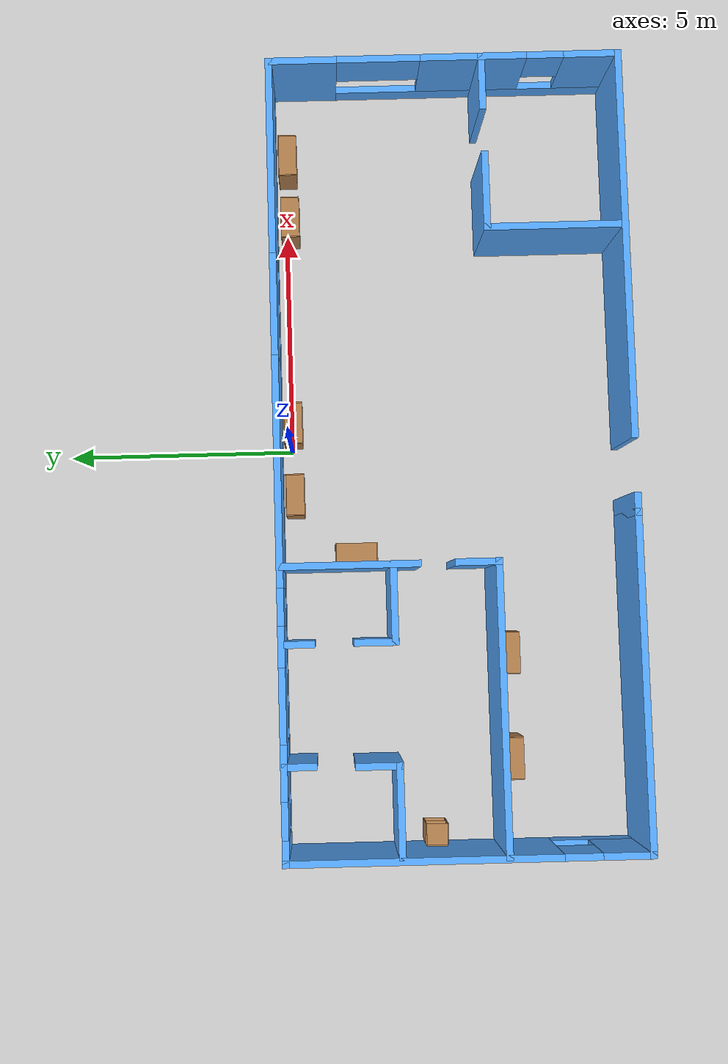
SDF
<sdf version="1.6">
 <world name="default">
  <light name="sun" type="directional">
   <pose>0 0 10 0 -0 0</pose>
   <diffuse>0.8 0.8 0.8 1</diffuse>
   <specular>0.2 0.2 0.2 1</specular>
   <attenuation>
    <range>1000</range>
    <constant>0.9</constant>
    <linear>0.01</linear>
    <quadratic>0.001</quadratic>
   </attenuation>
   <direction>-0.5 0.1 -0.9</direction>
  </light>
  <model name="ground_plane">
   <static>1</static>
   <link name="link">
    <collision name="collision">
     <geometry><plane><normal>0 0 1</normal><size>100 100</size></plane></geometry>
     <surface><friction><ode><mu>100</mu><mu2>50</mu2></ode></friction></surface>
    </collision>
    <visual name="visual">
     <cast_shadows>0</cast_shadows>
     <geometry><plane><normal>0 0 1</normal><size>100 100</size></plane></geometry>
     <material>
      <script><uri>file://media/materials/scripts/gazebo.material</uri><name>Gazebo/Grey</name></script>
     </material>
    </visual>
   </link>
  </model>
  <gravity>0 0 -9.8</gravity>
  <magnetic_field>6e-06 2.3e-05 -4.2e-05</magnetic_field>
  <atmosphere type="adiabatic"/>
  <physics name="default_physics" default="0" type="ode">
   <max_step_size>0.001</max_step_size>
   <real_time_factor>1</real_time_factor>
   <real_time_update_rate>1000</real_time_update_rate>
  </physics>
  <scene><ambient>0.4 0.4 0.4 1</ambient><background>0.7 0.7 0.7 1</background><shadows>1</shadows></scene>
  <spherical_coordinates>
   <surface_model>EARTH_WGS84</surface_model>
   <latitude_deg>0</latitude_deg>
   <longitude_deg>0</longitude_deg>
   <elevation>0</elevation>
   <heading_deg>0</heading_deg>
  </spherical_coordinates>
  <model name="bookshelf">
   <static>1</static>
   <link name="link">
    <inertial><mass>1</mass></inertial>
    <collision name="back">
     <pose>0 0.005 0.6 0 -0 0</pose>
     <geometry><box><size>0.9 0.01 1.2</size></box></geometry>
    </collision>
    <visual name="visual1">
     <pose>0 0.005 0.6 0 -0 0</pose>
     <geometry><box><size>0.9 0.01 1.2</size></box></geometry>
     <material>
      <script><uri>file://media/materials/scripts/gazebo.material</uri><name>Gazebo/Wood</name></script>
     </material>
    </visual>
    <collision name="left_side">
     <pose>0.45 -0.195 0.6 0 -0 0</pose>
     <geometry><box><size>0.02 0.4 1.2</size></box></geometry>
    </collision>
    <visual name="visual2">
     <pose>0.45 -0.195 0.6 0 -0 0</pose>
     <geometry><box><size>0.02 0.4 1.2</size></box></geometry>
     <material>
      <script><uri>file://media/materials/scripts/gazebo.material</uri><name>Gazebo/Wood</name></script>
     </material>
    </visual>
    <collision name="right_side">
     <pose>-0.45 -0.195 0.6 0 -0 0</pose>
     <geometry><box><size>0.02 0.4 1.2</size></box></geometry>
    </collision>
    <visual name="visual3">
     <pose>-0.45 -0.195 0.6 0 -0 0</pose>
     <geometry><box><size>0.02 0.4 1.2</size></box></geometry>
     <material>
      <script><uri>file://media/materials/scripts/gazebo.material</uri><name>Gazebo/Wood</name></script>
     </material>
    </visual>
    <collision name="bottom">
     <pose>0 -0.195 0.03 0 -0 0</pose>
     <geometry><box><size>0.88 0.4 0.06</size></box></geometry>
    </collision>
    <visual name="visual4">
     <pose>0 -0.195 0.03 0 -0 0</pose>
     <geometry><box><size>0.88 0.4 0.06</size></box></geometry>
     <material>
      <script><uri>file://media/materials/scripts/gazebo.material</uri><name>Gazebo/Wood</name></script>
     </material>
    </visual>
    <collision name="top">
     <pose>0 -0.195 1.19 0 -0 0</pose>
     <geometry><box><size>0.88 0.4 0.02</size></box></geometry>
    </collision>
    <visual name="visual5">
     <pose>0 -0.195 1.19 0 -0 0</pose>
     <geometry><box><size>0.88 0.4 0.02</size></box></geometry>
     <material>
      <script><uri>file://media/materials/scripts/gazebo.material</uri><name>Gazebo/Wood</name></script>
     </material>
    </visual>
    <collision name="low_shelf">
     <pose>0 -0.195 0.43 0 -0 0</pose>
     <geometry><box><size>0.88 0.4 0.02</size></box></geometry>
    </collision>
    <visual name="visual6">
     <pose>0 -0.195 0.43 0 -0 0</pose>
     <geometry><box><size>0.88 0.4 0.02</size></box></geometry>
     <material>
      <script><uri>file://media/materials/scripts/gazebo.material</uri><name>Gazebo/Wood</name></script>
     </material>
    </visual>
    <collision name="high_shelf">
     <pose>0 -0.195 0.8 0 -0 0</pose>
     <geometry><box><size>0.88 0.4 0.02</size></box></geometry>
    </collision>
    <visual name="visual7">
     <pose>0 -0.195 0.8 0 -0 0</pose>
     <geometry><box><size>0.88 0.4 0.02</size></box></geometry>
     <material>
      <script><uri>file://media/materials/scripts/gazebo.material</uri><name>Gazebo/Wood</name></script>
     </material>
    </visual>
   </link>
   <pose>6.60281 0.15051 0 0 -0 0</pose>
  </model>
  <model name="bookshelf_0">
   <static>1</static>
   <link name="link">
    <inertial><mass>1</mass></inertial>
    <collision name="back">
     <pose>0 0.005 0.6 0 -0 0</pose>
     <geometry><box><size>0.9 0.01 1.2</size></box></geometry>
    </collision>
    <visual name="visual1">
     <pose>0 0.005 0.6 0 -0 0</pose>
     <geometry><box><size>0.9 0.01 1.2</size></box></geometry>
     <material>
      <script><uri>file://media/materials/scripts/gazebo.material</uri><name>Gazebo/Wood</name></script>
     </material>
    </visual>
    <collision name="left_side">
     <pose>0.45 -0.195 0.6 0 -0 0</pose>
     <geometry><box><size>0.02 0.4 1.2</size></box></geometry>
    </collision>
    <visual name="visual2">
     <pose>0.45 -0.195 0.6 0 -0 0</pose>
     <geometry><box><size>0.02 0.4 1.2</size></box></geometry>
     <material>
      <script><uri>file://media/materials/scripts/gazebo.material</uri><name>Gazebo/Wood</name></script>
     </material>
    </visual>
    <collision name="right_side">
     <pose>-0.45 -0.195 0.6 0 -0 0</pose>
     <geometry><box><size>0.02 0.4 1.2</size></box></geometry>
    </collision>
    <visual name="visual3">
     <pose>-0.45 -0.195 0.6 0 -0 0</pose>
     <geometry><box><size>0.02 0.4 1.2</size></box></geometry>
     <material>
      <script><uri>file://media/materials/scripts/gazebo.material</uri><name>Gazebo/Wood</name></script>
     </material>
    </visual>
    <collision name="bottom">
     <pose>0 -0.195 0.03 0 -0 0</pose>
     <geometry><box><size>0.88 0.4 0.06</size></box></geometry>
    </collision>
    <visual name="visual4">
     <pose>0 -0.195 0.03 0 -0 0</pose>
     <geometry><box><size>0.88 0.4 0.06</size></box></geometry>
     <material>
      <script><uri>file://media/materials/scripts/gazebo.material</uri><name>Gazebo/Wood</name></script>
     </material>
    </visual>
    <collision name="top">
     <pose>0 -0.195 1.19 0 -0 0</pose>
     <geometry><box><size>0.88 0.4 0.02</size></box></geometry>
    </collision>
    <visual name="visual5">
     <pose>0 -0.195 1.19 0 -0 0</pose>
     <geometry><box><size>0.88 0.4 0.02</size></box></geometry>
     <material>
      <script><uri>file://media/materials/scripts/gazebo.material</uri><name>Gazebo/Wood</name></script>
     </material>
    </visual>
    <collision name="low_shelf">
     <pose>0 -0.195 0.43 0 -0 0</pose>
     <geometry><box><size>0.88 0.4 0.02</size></box></geometry>
    </collision>
    <visual name="visual6">
     <pose>0 -0.195 0.43 0 -0 0</pose>
     <geometry><box><size>0.88 0.4 0.02</size></box></geometry>
     <material>
      <script><uri>file://media/materials/scripts/gazebo.material</uri><name>Gazebo/Wood</name></script>
     </material>
    </visual>
    <collision name="high_shelf">
     <pose>0 -0.195 0.8 0 -0 0</pose>
     <geometry><box><size>0.88 0.4 0.02</size></box></geometry>
    </collision>
    <visual name="visual7">
     <pose>0 -0.195 0.8 0 -0 0</pose>
     <geometry><box><size>0.88 0.4 0.02</size></box></geometry>
     <material>
      <script><uri>file://media/materials/scripts/gazebo.material</uri><name>Gazebo/Wood</name></script>
     </material>
    </visual>
   </link>
   <pose>5.19142 0.119436 0 0 -0 0</pose>
  </model>
  <model name="bookshelf_1">
   <static>1</static>
   <link name="link">
    <inertial><mass>1</mass></inertial>
    <collision name="back">
     <pose>0 0.005 0.6 0 -0 0</pose>
     <geometry><box><size>0.9 0.01 1.2</size></box></geometry>
    </collision>
    <visual name="visual1">
     <pose>0 0.005 0.6 0 -0 0</pose>
     <geometry><box><size>0.9 0.01 1.2</size></box></geometry>
     <material>
      <script><uri>file://media/materials/scripts/gazebo.material</uri><name>Gazebo/Wood</name></script>
     </material>
    </visual>
    <collision name="left_side">
     <pose>0.45 -0.195 0.6 0 -0 0</pose>
     <geometry><box><size>0.02 0.4 1.2</size></box></geometry>
    </collision>
    <visual name="visual2">
     <pose>0.45 -0.195 0.6 0 -0 0</pose>
     <geometry><box><size>0.02 0.4 1.2</size></box></geometry>
     <material>
      <script><uri>file://media/materials/scripts/gazebo.material</uri><name>Gazebo/Wood</name></script>
     </material>
    </visual>
    <collision name="right_side">
     <pose>-0.45 -0.195 0.6 0 -0 0</pose>
     <geometry><box><size>0.02 0.4 1.2</size></box></geometry>
    </collision>
    <visual name="visual3">
     <pose>-0.45 -0.195 0.6 0 -0 0</pose>
     <geometry><box><size>0.02 0.4 1.2</size></box></geometry>
     <material>
      <script><uri>file://media/materials/scripts/gazebo.material</uri><name>Gazebo/Wood</name></script>
     </material>
    </visual>
    <collision name="bottom">
     <pose>0 -0.195 0.03 0 -0 0</pose>
     <geometry><box><size>0.88 0.4 0.06</size></box></geometry>
    </collision>
    <visual name="visual4">
     <pose>0 -0.195 0.03 0 -0 0</pose>
     <geometry><box><size>0.88 0.4 0.06</size></box></geometry>
     <material>
      <script><uri>file://media/materials/scripts/gazebo.material</uri><name>Gazebo/Wood</name></script>
     </material>
    </visual>
    <collision name="top">
     <pose>0 -0.195 1.19 0 -0 0</pose>
     <geometry><box><size>0.88 0.4 0.02</size></box></geometry>
    </collision>
    <visual name="visual5">
     <pose>0 -0.195 1.19 0 -0 0</pose>
     <geometry><box><size>0.88 0.4 0.02</size></box></geometry>
     <material>
      <script><uri>file://media/materials/scripts/gazebo.material</uri><name>Gazebo/Wood</name></script>
     </material>
    </visual>
    <collision name="low_shelf">
     <pose>0 -0.195 0.43 0 -0 0</pose>
     <geometry><box><size>0.88 0.4 0.02</size></box></geometry>
    </collision>
    <visual name="visual6">
     <pose>0 -0.195 0.43 0 -0 0</pose>
     <geometry><box><size>0.88 0.4 0.02</size></box></geometry>
     <material>
      <script><uri>file://media/materials/scripts/gazebo.material</uri><name>Gazebo/Wood</name></script>
     </material>
    </visual>
    <collision name="high_shelf">
     <pose>0 -0.195 0.8 0 -0 0</pose>
     <geometry><box><size>0.88 0.4 0.02</size></box></geometry>
    </collision>
    <visual name="visual7">
     <pose>0 -0.195 0.8 0 -0 0</pose>
     <geometry><box><size>0.88 0.4 0.02</size></box></geometry>
     <material>
      <script><uri>file://media/materials/scripts/gazebo.material</uri><name>Gazebo/Wood</name></script>
     </material>
    </visual>
   </link>
   <pose>-1.03524 0.148721 0 0 -0 0</pose>
  </model>
  <model name="bookshelf_2">
   <static>1</static>
   <link name="link">
    <inertial><mass>1</mass></inertial>
    <collision name="back">
     <pose>0 0.005 0.6 0 -0 0</pose>
     <geometry><box><size>0.9 0.01 1.2</size></box></geometry>
    </collision>
    <visual name="visual1">
     <pose>0 0.005 0.6 0 -0 0</pose>
     <geometry><box><size>0.9 0.01 1.2</size></box></geometry>
     <material>
      <script><uri>file://media/materials/scripts/gazebo.material</uri><name>Gazebo/Wood</name></script>
     </material>
    </visual>
    <collision name="left_side">
     <pose>0.45 -0.195 0.6 0 -0 0</pose>
     <geometry><box><size>0.02 0.4 1.2</size></box></geometry>
    </collision>
    <visual name="visual2">
     <pose>0.45 -0.195 0.6 0 -0 0</pose>
     <geometry><box><size>0.02 0.4 1.2</size></box></geometry>
     <material>
      <script><uri>file://media/materials/scripts/gazebo.material</uri><name>Gazebo/Wood</name></script>
     </material>
    </visual>
    <collision name="right_side">
     <pose>-0.45 -0.195 0.6 0 -0 0</pose>
     <geometry><box><size>0.02 0.4 1.2</size></box></geometry>
    </collision>
    <visual name="visual3">
     <pose>-0.45 -0.195 0.6 0 -0 0</pose>
     <geometry><box><size>0.02 0.4 1.2</size></box></geometry>
     <material>
      <script><uri>file://media/materials/scripts/gazebo.material</uri><name>Gazebo/Wood</name></script>
     </material>
    </visual>
    <collision name="bottom">
     <pose>0 -0.195 0.03 0 -0 0</pose>
     <geometry><box><size>0.88 0.4 0.06</size></box></geometry>
    </collision>
    <visual name="visual4">
     <pose>0 -0.195 0.03 0 -0 0</pose>
     <geometry><box><size>0.88 0.4 0.06</size></box></geometry>
     <material>
      <script><uri>file://media/materials/scripts/gazebo.material</uri><name>Gazebo/Wood</name></script>
     </material>
    </visual>
    <collision name="top">
     <pose>0 -0.195 1.19 0 -0 0</pose>
     <geometry><box><size>0.88 0.4 0.02</size></box></geometry>
    </collision>
    <visual name="visual5">
     <pose>0 -0.195 1.19 0 -0 0</pose>
     <geometry><box><size>0.88 0.4 0.02</size></box></geometry>
     <material>
      <script><uri>file://media/materials/scripts/gazebo.material</uri><name>Gazebo/Wood</name></script>
     </material>
    </visual>
    <collision name="low_shelf">
     <pose>0 -0.195 0.43 0 -0 0</pose>
     <geometry><box><size>0.88 0.4 0.02</size></box></geometry>
    </collision>
    <visual name="visual6">
     <pose>0 -0.195 0.43 0 -0 0</pose>
     <geometry><box><size>0.88 0.4 0.02</size></box></geometry>
     <material>
      <script><uri>file://media/materials/scripts/gazebo.material</uri><name>Gazebo/Wood</name></script>
     </material>
    </visual>
    <collision name="high_shelf">
     <pose>0 -0.195 0.8 0 -0 0</pose>
     <geometry><box><size>0.88 0.4 0.02</size></box></geometry>
    </collision>
    <visual name="visual7">
     <pose>0 -0.195 0.8 0 -0 0</pose>
     <geometry><box><size>0.88 0.4 0.02</size></box></geometry>
     <material>
      <script><uri>file://media/materials/scripts/gazebo.material</uri><name>Gazebo/Wood</name></script>
     </material>
    </visual>
   </link>
   <pose>0.557488 0.158095 0 0 -0 0</pose>
  </model>
  <model name="bookshelf_3">
   <static>1</static>
   <link name="link">
    <inertial><mass>1</mass></inertial>
    <collision name="back">
     <pose>0 0.005 0.6 0 -0 0</pose>
     <geometry><box><size>0.9 0.01 1.2</size></box></geometry>
    </collision>
    <visual name="visual1">
     <pose>0 0.005 0.6 0 -0 0</pose>
     <geometry><box><size>0.9 0.01 1.2</size></box></geometry>
     <material>
      <script><uri>file://media/materials/scripts/gazebo.material</uri><name>Gazebo/Wood</name></script>
     </material>
    </visual>
    <collision name="left_side">
     <pose>0.45 -0.195 0.6 0 -0 0</pose>
     <geometry><box><size>0.02 0.4 1.2</size></box></geometry>
    </collision>
    <visual name="visual2">
     <pose>0.45 -0.195 0.6 0 -0 0</pose>
     <geometry><box><size>0.02 0.4 1.2</size></box></geometry>
     <material>
      <script><uri>file://media/materials/scripts/gazebo.material</uri><name>Gazebo/Wood</name></script>
     </material>
    </visual>
    <collision name="right_side">
     <pose>-0.45 -0.195 0.6 0 -0 0</pose>
     <geometry><box><size>0.02 0.4 1.2</size></box></geometry>
    </collision>
    <visual name="visual3">
     <pose>-0.45 -0.195 0.6 0 -0 0</pose>
     <geometry><box><size>0.02 0.4 1.2</size></box></geometry>
     <material>
      <script><uri>file://media/materials/scripts/gazebo.material</uri><name>Gazebo/Wood</name></script>
     </material>
    </visual>
    <collision name="bottom">
     <pose>0 -0.195 0.03 0 -0 0</pose>
     <geometry><box><size>0.88 0.4 0.06</size></box></geometry>
    </collision>
    <visual name="visual4">
     <pose>0 -0.195 0.03 0 -0 0</pose>
     <geometry><box><size>0.88 0.4 0.06</size></box></geometry>
     <material>
      <script><uri>file://media/materials/scripts/gazebo.material</uri><name>Gazebo/Wood</name></script>
     </material>
    </visual>
    <collision name="top">
     <pose>0 -0.195 1.19 0 -0 0</pose>
     <geometry><box><size>0.88 0.4 0.02</size></box></geometry>
    </collision>
    <visual name="visual5">
     <pose>0 -0.195 1.19 0 -0 0</pose>
     <geometry><box><size>0.88 0.4 0.02</size></box></geometry>
     <material>
      <script><uri>file://media/materials/scripts/gazebo.material</uri><name>Gazebo/Wood</name></script>
     </material>
    </visual>
    <collision name="low_shelf">
     <pose>0 -0.195 0.43 0 -0 0</pose>
     <geometry><box><size>0.88 0.4 0.02</size></box></geometry>
    </collision>
    <visual name="visual6">
     <pose>0 -0.195 0.43 0 -0 0</pose>
     <geometry><box><size>0.88 0.4 0.02</size></box></geometry>
     <material>
      <script><uri>file://media/materials/scripts/gazebo.material</uri><name>Gazebo/Wood</name></script>
     </material>
    </visual>
    <collision name="high_shelf">
     <pose>0 -0.195 0.8 0 -0 0</pose>
     <geometry><box><size>0.88 0.4 0.02</size></box></geometry>
    </collision>
    <visual name="visual7">
     <pose>0 -0.195 0.8 0 -0 0</pose>
     <geometry><box><size>0.88 0.4 0.02</size></box></geometry>
     <material>
      <script><uri>file://media/materials/scripts/gazebo.material</uri><name>Gazebo/Wood</name></script>
     </material>
    </visual>
   </link>
   <pose>-2.52223 -1.35947 0 0 -0 1.56719</pose>
  </model>
  <model name="FirstFloorHome">
   <pose>-0.232253 -3.50345 0 0 -0 0</pose>
   <link name="Wall_10">
    <collision name="Wall_10_Collision">
     <geometry><box><size>8.5 0.15 2.5</size></box></geometry>
     <pose>0 0 1.25 0 -0 0</pose>
    </collision>
    <visual name="Wall_10_Visual">
     <pose>0 0 1.25 0 -0 0</pose>
     <geometry><box><size>8.5 0.15 2.5</size></box></geometry>
     <material>
      <script><uri>file://media/materials/scripts/gazebo.material</uri><name>Gazebo/Grey</name></script>
      <ambient>0.333333 0.666667 1 1</ambient>
     </material>
     <meta><layer>0</layer></meta>
    </visual>
    <pose>4.375 -3.8 0 0 -0 3.14159</pose>
   </link>
   <link name="Wall_12">
    <pose>-8.55 0 0 0 0 -1.5708</pose>
    <visual name="Wall_12_Visual_0">
     <pose>-0.9579 0 1.25 0 -0 0</pose>
     <geometry><box><size>5.8342 0.15 2.5</size></box></geometry>
     <material>
      <script><uri>file://media/materials/scripts/gazebo.material</uri><name>Gazebo/Grey</name></script>
      <ambient>0.333333 0.666667 1 1</ambient>
     </material>
     <meta><layer>0</layer></meta>
    </visual>
    <collision name="Wall_12_Collision_0">
     <geometry><box><size>5.8342 0.15 2.5</size></box></geometry>
     <pose>-0.9579 0 1.25 0 -0 0</pose>
    </collision>
    <visual name="Wall_12_Visual_1">
     <pose>2.9171 0 0.25 0 -0 0</pose>
     <geometry><box><size>1.9158 0.15 0.5</size></box></geometry>
     <material>
      <script><uri>file://media/materials/scripts/gazebo.material</uri><name>Gazebo/Grey</name></script>
      <ambient>0.333333 0.666667 1 1</ambient>
     </material>
     <meta><layer>0</layer></meta>
    </visual>
    <collision name="Wall_12_Collision_1">
     <geometry><box><size>1.9158 0.15 0.5</size></box></geometry>
     <pose>2.9171 0 0.25 0 -0 0</pose>
    </collision>
    <visual name="Wall_12_Visual_2">
     <pose>3.3171 0 1.5 0 -0 0</pose>
     <geometry><box><size>1.1158 0.15 2</size></box></geometry>
     <material>
      <script><uri>file://media/materials/scripts/gazebo.material</uri><name>Gazebo/Grey</name></script>
      <ambient>0.333333 0.666667 1 1</ambient>
     </material>
     <meta><layer>0</layer></meta>
    </visual>
    <collision name="Wall_12_Collision_2">
     <geometry><box><size>1.1158 0.15 2</size></box></geometry>
     <pose>3.3171 0 1.5 0 -0 0</pose>
    </collision>
    <visual name="Wall_12_Visual_3">
     <pose>2.3592 0 1.9 0 -0 0</pose>
     <geometry><box><size>0.8 0.15 1.2</size></box></geometry>
     <material>
      <script><uri>file://media/materials/scripts/gazebo.material</uri><name>Gazebo/Grey</name></script>
      <ambient>0.333333 0.666667 1 1</ambient>
     </material>
     <meta><layer>0</layer></meta>
    </visual>
    <collision name="Wall_12_Collision_3">
     <geometry><box><size>0.8 0.15 1.2</size></box></geometry>
     <pose>2.3592 0 1.9 0 -0 0</pose>
    </collision>
   </link>
   <link name="Wall_13">
    <collision name="Wall_13_Collision">
     <geometry><box><size>7.25 0.15 2.5</size></box></geometry>
     <pose>0 0 1.25 0 -0 0</pose>
    </collision>
    <visual name="Wall_13_Visual">
     <pose>0 0 1.25 0 -0 0</pose>
     <geometry><box><size>7.25 0.15 2.5</size></box></geometry>
     <material>
      <script><uri>file://media/materials/scripts/gazebo.material</uri><name>Gazebo/Grey</name></script>
      <ambient>0.333333 0.666667 1 1</ambient>
     </material>
     <meta><layer>0</layer></meta>
    </visual>
    <pose>-5 -3.8 0 0 -0 0</pose>
   </link>
   <link name="Wall_14">
    <collision name="Wall_14_Collision">
     <geometry><box><size>0.5 0.15 2.5</size></box></geometry>
     <pose>0 0 1.25 0 -0 0</pose>
    </collision>
    <visual name="Wall_14_Visual">
     <pose>0 0 1.25 0 -0 0</pose>
     <geometry><box><size>0.5 0.15 2.5</size></box></geometry>
     <material>
      <script><uri>file://media/materials/scripts/gazebo.material</uri><name>Gazebo/Grey</name></script>
      <ambient>0.333333 0.666667 1 1</ambient>
     </material>
     <meta><layer>0</layer></meta>
    </visual>
    <pose>-1.275 -3.8 0 0 -0 0</pose>
   </link>
   <link name="Wall_16">
    <collision name="Wall_16_Collision">
     <geometry><box><size>3 0.15 2.5</size></box></geometry>
     <pose>0 0 1.25 0 -0 0</pose>
    </collision>
    <visual name="Wall_16_Visual">
     <pose>0 0 1.25 0 -0 0</pose>
     <geometry><box><size>3 0.15 2.5</size></box></geometry>
     <material>
      <script><uri>file://media/materials/scripts/gazebo.material</uri><name>Gazebo/Grey</name></script>
      <ambient>0.333333 0.666667 1 1</ambient>
     </material>
     <meta><layer>0</layer></meta>
    </visual>
    <pose>4.76518 -2.25725 0 0 -0 1.5708</pose>
   </link>
   <link name="Wall_17">
    <collision name="Wall_17_Collision">
     <geometry><box><size>1.75 0.15 2.5</size></box></geometry>
     <pose>0 0 1.25 0 -0 0</pose>
    </collision>
    <visual name="Wall_17_Visual">
     <pose>0 0 1.25 0 -0 0</pose>
     <geometry><box><size>1.75 0.15 2.5</size></box></geometry>
     <material>
      <script><uri>file://media/materials/scripts/gazebo.material</uri><name>Gazebo/Grey</name></script>
      <ambient>0.333333 0.666667 1 1</ambient>
     </material>
     <meta><layer>0</layer></meta>
    </visual>
    <pose>5.56518 -0.832249 0 0 -0 0</pose>
   </link>
   <link name="Wall_19">
    <collision name="Wall_19_Collision">
     <geometry><box><size>1.25 0.15 2.5</size></box></geometry>
     <pose>0 0 1.25 0 -0 0</pose>
    </collision>
    <visual name="Wall_19_Visual">
     <pose>0 0 1.25 0 -0 0</pose>
     <geometry><box><size>1.25 0.15 2.5</size></box></geometry>
     <material>
      <script><uri>file://media/materials/scripts/gazebo.material</uri><name>Gazebo/Grey</name></script>
      <ambient>0.333333 0.666667 1 1</ambient>
     </material>
     <meta><layer>0</layer></meta>
    </visual>
    <pose>7.99029 -0.826122 0 0 -0 0</pose>
   </link>
   <link name="Wall_21">
    <collision name="Wall_21_Collision">
     <geometry><box><size>6.25 0.15 2.5</size></box></geometry>
     <pose>0 0 1.25 0 -0 0</pose>
    </collision>
    <visual name="Wall_21_Visual">
     <pose>0 0 1.25 0 -0 0</pose>
     <geometry><box><size>6.25 0.15 2.5</size></box></geometry>
     <material>
      <script><uri>file://media/materials/scripts/gazebo.material</uri><name>Gazebo/Grey</name></script>
      <ambient>0.333333 0.666667 1 1</ambient>
     </material>
     <meta><layer>0</layer></meta>
    </visual>
    <pose>-5.45977 -0.826122 0 0 -0 0</pose>
   </link>
   <link name="Wall_22">
    <collision name="Wall_22_Collision">
     <geometry><box><size>1 0.15 2.5</size></box></geometry>
     <pose>0 0 1.25 0 -0 0</pose>
    </collision>
    <visual name="Wall_22_Visual">
     <pose>0 0 1.25 0 -0 0</pose>
     <geometry><box><size>1 0.15 2.5</size></box></geometry>
     <material>
      <script><uri>file://media/materials/scripts/gazebo.material</uri><name>Gazebo/Grey</name></script>
      <ambient>0.333333 0.666667 1 1</ambient>
     </material>
     <meta><layer>0</layer></meta>
    </visual>
    <pose>-2.40977 -0.401122 0 0 -0 1.5708</pose>
   </link>
   <link name="Wall_24">
    <collision name="Wall_24_Collision">
     <geometry><box><size>3 0.15 2.5</size></box></geometry>
     <pose>0 0 1.25 0 -0 0</pose>
    </collision>
    <visual name="Wall_24_Visual">
     <pose>0 0 1.25 0 -0 0</pose>
     <geometry><box><size>3 0.15 2.5</size></box></geometry>
     <material>
      <script><uri>file://media/materials/scripts/gazebo.material</uri><name>Gazebo/Grey</name></script>
      <ambient>0.333333 0.666667 1 1</ambient>
     </material>
     <meta><layer>0</layer></meta>
    </visual>
    <pose>-2.41536 2.31466 0 0 0 -1.5708</pose>
   </link>
   <link name="Wall_26">
    <collision name="Wall_26_Collision">
     <geometry><box><size>2 0.15 2.5</size></box></geometry>
     <pose>0 0 1.25 0 -0 0</pose>
    </collision>
    <visual name="Wall_26_Visual">
     <pose>0 0 1.25 0 -0 0</pose>
     <geometry><box><size>2 0.15 2.5</size></box></geometry>
     <material>
      <script><uri>file://media/materials/scripts/gazebo.material</uri><name>Gazebo/Grey</name></script>
      <ambient>0.333333 0.666667 1 1</ambient>
     </material>
     <meta><layer>0</layer></meta>
    </visual>
    <pose>-7.52443 1.38637 0 0 -0 0</pose>
   </link>
   <link name="Wall_27">
    <collision name="Wall_27_Collision">
     <geometry><box><size>1 0.15 2.5</size></box></geometry>
     <pose>0 0 1.25 0 -0 0</pose>
    </collision>
    <visual name="Wall_27_Visual">
     <pose>0 0 1.25 0 -0 0</pose>
     <geometry><box><size>1 0.15 2.5</size></box></geometry>
     <material>
      <script><uri>file://media/materials/scripts/gazebo.material</uri><name>Gazebo/Grey</name></script>
      <ambient>0.333333 0.666667 1 1</ambient>
     </material>
     <meta><layer>0</layer></meta>
    </visual>
    <pose>-6.59943 1.81137 0 0 -0 1.5708</pose>
   </link>
   <link name="Wall_29">
    <collision name="Wall_29_Collision">
     <geometry><box><size>1.75 0.15 2.5</size></box></geometry>
     <pose>0 0 1.25 0 -0 0</pose>
    </collision>
    <visual name="Wall_29_Visual">
     <pose>0 0 1.25 0 -0 0</pose>
     <geometry><box><size>1.75 0.15 2.5</size></box></geometry>
     <material>
      <script><uri>file://media/materials/scripts/gazebo.material</uri><name>Gazebo/Grey</name></script>
      <ambient>0.333333 0.666667 1 1</ambient>
     </material>
     <meta><layer>0</layer></meta>
    </visual>
    <pose>-3.24299 1.40507 0 0 -0 3.14159</pose>
   </link>
   <link name="Wall_30">
    <collision name="Wall_30_Collision">
     <geometry><box><size>0.948336 0.15 2.5</size></box></geometry>
     <pose>0 0 1.25 0 -0 0</pose>
    </collision>
    <visual name="Wall_30_Visual">
     <pose>0 0 1.25 0 -0 0</pose>
     <geometry><box><size>0.948336 0.15 2.5</size></box></geometry>
     <material>
      <script><uri>file://media/materials/scripts/gazebo.material</uri><name>Gazebo/Grey</name></script>
      <ambient>0.333333 0.666667 1 1</ambient>
     </material>
     <meta><layer>0</layer></meta>
    </visual>
    <pose>-4.04169 1.79424 0 0 -0 1.56752</pose>
   </link>
   <link name="Wall_35">
    <collision name="Wall_35_Collision">
     <geometry><box><size>0.75 0.15 2.5</size></box></geometry>
     <pose>0 0 1.25 0 -0 0</pose>
    </collision>
    <visual name="Wall_35_Visual">
     <pose>0 0 1.25 0 -0 0</pose>
     <geometry><box><size>0.75 0.15 2.5</size></box></geometry>
     <material>
      <script><uri>file://media/materials/scripts/gazebo.material</uri><name>Gazebo/Grey</name></script>
      <ambient>0.333333 0.666667 1 1</ambient>
     </material>
     <meta><layer>0</layer></meta>
    </visual>
    <pose>-6.57562 3.47997 0 0 -0 1.5708</pose>
   </link>
   <link name="Wall_37">
    <collision name="Wall_37_Collision">
     <geometry><box><size>0.75 0.15 2.5</size></box></geometry>
     <pose>0 0 1.25 0 -0 0</pose>
    </collision>
    <visual name="Wall_37_Visual">
     <pose>0 0 1.25 0 -0 0</pose>
     <geometry><box><size>0.75 0.15 2.5</size></box></geometry>
     <material>
      <script><uri>file://media/materials/scripts/gazebo.material</uri><name>Gazebo/Grey</name></script>
      <ambient>0.333333 0.666667 1 1</ambient>
     </material>
     <meta><layer>0</layer></meta>
    </visual>
    <pose>-4.05097 3.46645 0 0 0 -1.5708</pose>
   </link>
   <link name="Wall_8">
    <pose>0 3.8 0 0 -0 0</pose>
    <visual name="Wall_8_Visual_0">
     <pose>-8.34971 0 1.25 0 -0 0</pose>
     <geometry><box><size>0.550587 0.15 2.5</size></box></geometry>
     <material>
      <script><uri>file://media/materials/scripts/gazebo.material</uri><name>Gazebo/Grey</name></script>
      <ambient>0.333333 0.666667 1 1</ambient>
     </material>
     <meta><layer>0</layer></meta>
    </visual>
    <collision name="Wall_8_Collision_0">
     <geometry><box><size>0.550587 0.15 2.5</size></box></geometry>
     <pose>-8.34971 0 1.25 0 -0 0</pose>
    </collision>
    <visual name="Wall_8_Visual_1">
     <pose>0.275294 0 0.25 0 -0 0</pose>
     <geometry><box><size>16.6994 0.15 0.5</size></box></geometry>
     <material>
      <script><uri>file://media/materials/scripts/gazebo.material</uri><name>Gazebo/Grey</name></script>
      <ambient>0.333333 0.666667 1 1</ambient>
     </material>
     <meta><layer>0</layer></meta>
    </visual>
    <collision name="Wall_8_Collision_1">
     <geometry><box><size>16.6994 0.15 0.5</size></box></geometry>
     <pose>0.275294 0 0.25 0 -0 0</pose>
    </collision>
    <visual name="Wall_8_Visual_2">
     <pose>-6.69136 0 1.5 0 -0 0</pose>
     <geometry><box><size>1.1661 0.15 2</size></box></geometry>
     <material>
      <script><uri>file://media/materials/scripts/gazebo.material</uri><name>Gazebo/Grey</name></script>
      <ambient>0.333333 0.666667 1 1</ambient>
     </material>
     <meta><layer>0</layer></meta>
    </visual>
    <collision name="Wall_8_Collision_2">
     <geometry><box><size>1.1661 0.15 2</size></box></geometry>
     <pose>-6.69136 0 1.5 0 -0 0</pose>
    </collision>
    <visual name="Wall_8_Visual_3">
     <pose>-4.08917 0 1.5 0 -0 0</pose>
     <geometry><box><size>0.865404 0.15 2</size></box></geometry>
     <material>
      <script><uri>file://media/materials/scripts/gazebo.material</uri><name>Gazebo/Grey</name></script>
      <ambient>0.333333 0.666667 1 1</ambient>
     </material>
     <meta><layer>0</layer></meta>
    </visual>
    <collision name="Wall_8_Collision_3">
     <geometry><box><size>0.865404 0.15 2</size></box></geometry>
     <pose>-4.08917 0 1.5 0 -0 0</pose>
    </collision>
    <visual name="Wall_8_Visual_4">
     <pose>-0.376706 0 1.5 0 -0 0</pose>
     <geometry><box><size>4.95952 0.15 2</size></box></geometry>
     <material>
      <script><uri>file://media/materials/scripts/gazebo.material</uri><name>Gazebo/Grey</name></script>
      <ambient>0.333333 0.666667 1 1</ambient>
     </material>
     <meta><layer>0</layer></meta>
    </visual>
    <collision name="Wall_8_Collision_4">
     <geometry><box><size>4.95952 0.15 2</size></box></geometry>
     <pose>-0.376706 0 1.5 0 -0 0</pose>
    </collision>
    <visual name="Wall_8_Visual_5">
     <pose>6.46951 0 1.5 0 -0 0</pose>
     <geometry><box><size>4.31098 0.15 2</size></box></geometry>
     <material>
      <script><uri>file://media/materials/scripts/gazebo.material</uri><name>Gazebo/Grey</name></script>
      <ambient>0.333333 0.666667 1 1</ambient>
     </material>
     <meta><layer>0</layer></meta>
    </visual>
    <collision name="Wall_8_Collision_5">
     <geometry><box><size>4.31098 0.15 2</size></box></geometry>
     <pose>6.46951 0 1.5 0 -0 0</pose>
    </collision>
    <visual name="Wall_8_Visual_6">
     <pose>-7.67441 0 1.9 0 -0 0</pose>
     <geometry><box><size>0.8 0.15 1.2</size></box></geometry>
     <material>
      <script><uri>file://media/materials/scripts/gazebo.material</uri><name>Gazebo/Grey</name></script>
      <ambient>0.333333 0.666667 1 1</ambient>
     </material>
     <meta><layer>0</layer></meta>
    </visual>
    <collision name="Wall_8_Collision_6">
     <geometry><box><size>0.8 0.15 1.2</size></box></geometry>
     <pose>-7.67441 0 1.9 0 -0 0</pose>
    </collision>
    <visual name="Wall_8_Visual_7">
     <pose>-5.31509 0 1.9 0 -0 0</pose>
     <geometry><box><size>1.58644 0.15 1.2</size></box></geometry>
     <material>
      <script><uri>file://media/materials/scripts/gazebo.material</uri><name>Gazebo/Grey</name></script>
      <ambient>0.333333 0.666667 1 1</ambient>
     </material>
     <meta><layer>0</layer></meta>
    </visual>
    <collision name="Wall_8_Collision_7">
     <geometry><box><size>1.58644 0.15 1.2</size></box></geometry>
     <pose>-5.31509 0 1.9 0 -0 0</pose>
    </collision>
    <visual name="Wall_8_Visual_8">
     <pose>-3.25647 0 1.9 0 -0 0</pose>
     <geometry><box><size>0.8 0.15 1.2</size></box></geometry>
     <material>
      <script><uri>file://media/materials/scripts/gazebo.material</uri><name>Gazebo/Grey</name></script>
      <ambient>0.333333 0.666667 1 1</ambient>
     </material>
     <meta><layer>0</layer></meta>
    </visual>
    <collision name="Wall_8_Collision_8">
     <geometry><box><size>0.8 0.15 1.2</size></box></geometry>
     <pose>-3.25647 0 1.9 0 -0 0</pose>
    </collision>
    <visual name="Wall_8_Visual_9">
     <pose>3.20854 0 1.9 0 -0 0</pose>
     <geometry><box><size>2.21097 0.15 1.2</size></box></geometry>
     <material>
      <script><uri>file://media/materials/scripts/gazebo.material</uri><name>Gazebo/Grey</name></script>
      <ambient>0.333333 0.666667 1 1</ambient>
     </material>
     <meta><layer>0</layer></meta>
    </visual>
    <collision name="Wall_8_Collision_9">
     <geometry><box><size>2.21097 0.15 1.2</size></box></geometry>
     <pose>3.20854 0 1.9 0 -0 0</pose>
    </collision>
   </link>
   <link name="Wall_9">
    <pose>8.55 0 0 0 0 -1.5708</pose>
    <visual name="Wall_9_Visual_0">
     <pose>-3.09748 0 1.25 0 -0 0</pose>
     <geometry><box><size>1.55504 0.15 2.5</size></box></geometry>
     <material>
      <script><uri>file://media/materials/scripts/gazebo.material</uri><name>Gazebo/Grey</name></script>
      <ambient>0.333333 0.666667 1 1</ambient>
     </material>
     <meta><layer>0</layer></meta>
    </visual>
    <collision name="Wall_9_Collision_0">
     <geometry><box><size>1.55504 0.15 2.5</size></box></geometry>
     <pose>-3.09748 0 1.25 0 -0 0</pose>
    </collision>
    <visual name="Wall_9_Visual_1">
     <pose>0.777519 0 0.25 0 -0 0</pose>
     <geometry><box><size>6.19496 0.15 0.5</size></box></geometry>
     <material>
      <script><uri>file://media/materials/scripts/gazebo.material</uri><name>Gazebo/Grey</name></script>
      <ambient>0.333333 0.666667 1 1</ambient>
     </material>
     <meta><layer>0</layer></meta>
    </visual>
    <collision name="Wall_9_Collision_1">
     <geometry><box><size>6.19496 0.15 0.5</size></box></geometry>
     <pose>0.777519 0 0.25 0 -0 0</pose>
    </collision>
    <visual name="Wall_9_Visual_2">
     <pose>0.6591 0 1.5 0 -0 0</pose>
     <geometry><box><size>2.32263 0.15 2</size></box></geometry>
     <material>
      <script><uri>file://media/materials/scripts/gazebo.material</uri><name>Gazebo/Grey</name></script>
      <ambient>0.333333 0.666667 1 1</ambient>
     </material>
     <meta><layer>0</layer></meta>
    </visual>
    <collision name="Wall_9_Collision_2">
     <geometry><box><size>2.32263 0.15 2</size></box></geometry>
     <pose>0.6591 0 1.5 0 -0 0</pose>
    </collision>
    <visual name="Wall_9_Visual_3">
     <pose>3.24771 0 1.5 0 -0 0</pose>
     <geometry><box><size>1.25458 0.15 2</size></box></geometry>
     <material>
      <script><uri>file://media/materials/scripts/gazebo.material</uri><name>Gazebo/Grey</name></script>
      <ambient>0.333333 0.666667 1 1</ambient>
     </material>
     <meta><layer>0</layer></meta>
    </visual>
    <collision name="Wall_9_Collision_3">
     <geometry><box><size>1.25458 0.15 2</size></box></geometry>
     <pose>3.24771 0 1.5 0 -0 0</pose>
    </collision>
    <visual name="Wall_9_Visual_4">
     <pose>-1.41109 0 1.9 0 -0 0</pose>
     <geometry><box><size>1.81775 0.15 1.2</size></box></geometry>
     <material>
      <script><uri>file://media/materials/scripts/gazebo.material</uri><name>Gazebo/Grey</name></script>
      <ambient>0.333333 0.666667 1 1</ambient>
     </material>
     <meta><layer>0</layer></meta>
    </visual>
    <collision name="Wall_9_Collision_4">
     <geometry><box><size>1.81775 0.15 1.2</size></box></geometry>
     <pose>-1.41109 0 1.9 0 -0 0</pose>
    </collision>
    <visual name="Wall_9_Visual_5">
     <pose>2.22042 0 1.9 0 -0 0</pose>
     <geometry><box><size>0.8 0.15 1.2</size></box></geometry>
     <material>
      <script><uri>file://media/materials/scripts/gazebo.material</uri><name>Gazebo/Grey</name></script>
      <ambient>0.333333 0.666667 1 1</ambient>
     </material>
     <meta><layer>0</layer></meta>
    </visual>
    <collision name="Wall_9_Collision_5">
     <geometry><box><size>0.8 0.15 1.2</size></box></geometry>
     <pose>2.22042 0 1.9 0 -0 0</pose>
    </collision>
   </link>
   <static>1</static>
  </model>
  <model name="bookshelf_4">
   <static>1</static>
   <link name="link">
    <inertial><mass>1</mass></inertial>
    <collision name="back">
     <pose>0 0.005 0.6 0 -0 0</pose>
     <geometry><box><size>0.9 0.01 1.2</size></box></geometry>
    </collision>
    <visual name="visual1">
     <pose>0 0.005 0.6 0 -0 0</pose>
     <geometry><box><size>0.9 0.01 1.2</size></box></geometry>
     <material>
      <script><uri>file://media/materials/scripts/gazebo.material</uri><name>Gazebo/Wood</name></script>
     </material>
    </visual>
    <collision name="left_side">
     <pose>0.45 -0.195 0.6 0 -0 0</pose>
     <geometry><box><size>0.02 0.4 1.2</size></box></geometry>
    </collision>
    <visual name="visual2">
     <pose>0.45 -0.195 0.6 0 -0 0</pose>
     <geometry><box><size>0.02 0.4 1.2</size></box></geometry>
     <material>
      <script><uri>file://media/materials/scripts/gazebo.material</uri><name>Gazebo/Wood</name></script>
     </material>
    </visual>
    <collision name="right_side">
     <pose>-0.45 -0.195 0.6 0 -0 0</pose>
     <geometry><box><size>0.02 0.4 1.2</size></box></geometry>
    </collision>
    <visual name="visual3">
     <pose>-0.45 -0.195 0.6 0 -0 0</pose>
     <geometry><box><size>0.02 0.4 1.2</size></box></geometry>
     <material>
      <script><uri>file://media/materials/scripts/gazebo.material</uri><name>Gazebo/Wood</name></script>
     </material>
    </visual>
    <collision name="bottom">
     <pose>0 -0.195 0.03 0 -0 0</pose>
     <geometry><box><size>0.88 0.4 0.06</size></box></geometry>
    </collision>
    <visual name="visual4">
     <pose>0 -0.195 0.03 0 -0 0</pose>
     <geometry><box><size>0.88 0.4 0.06</size></box></geometry>
     <material>
      <script><uri>file://media/materials/scripts/gazebo.material</uri><name>Gazebo/Wood</name></script>
     </material>
    </visual>
    <collision name="top">
     <pose>0 -0.195 1.19 0 -0 0</pose>
     <geometry><box><size>0.88 0.4 0.02</size></box></geometry>
    </collision>
    <visual name="visual5">
     <pose>0 -0.195 1.19 0 -0 0</pose>
     <geometry><box><size>0.88 0.4 0.02</size></box></geometry>
     <material>
      <script><uri>file://media/materials/scripts/gazebo.material</uri><name>Gazebo/Wood</name></script>
     </material>
    </visual>
    <collision name="low_shelf">
     <pose>0 -0.195 0.43 0 -0 0</pose>
     <geometry><box><size>0.88 0.4 0.02</size></box></geometry>
    </collision>
    <visual name="visual6">
     <pose>0 -0.195 0.43 0 -0 0</pose>
     <geometry><box><size>0.88 0.4 0.02</size></box></geometry>
     <material>
      <script><uri>file://media/materials/scripts/gazebo.material</uri><name>Gazebo/Wood</name></script>
     </material>
    </visual>
    <collision name="high_shelf">
     <pose>0 -0.195 0.8 0 -0 0</pose>
     <geometry><box><size>0.88 0.4 0.02</size></box></geometry>
    </collision>
    <visual name="visual7">
     <pose>0 -0.195 0.8 0 -0 0</pose>
     <geometry><box><size>0.88 0.4 0.02</size></box></geometry>
     <material>
      <script><uri>file://media/materials/scripts/gazebo.material</uri><name>Gazebo/Wood</name></script>
     </material>
    </visual>
   </link>
   <pose>-6.8514 -4.46092 0 0 -0 0</pose>
  </model>
  <model name="bookshelf_5">
   <static>1</static>
   <link name="link">
    <inertial><mass>1</mass></inertial>
    <collision name="back">
     <pose>0 0.005 0.6 0 -0 0</pose>
     <geometry><box><size>0.9 0.01 1.2</size></box></geometry>
    </collision>
    <visual name="visual1">
     <pose>0 0.005 0.6 0 -0 0</pose>
     <geometry><box><size>0.9 0.01 1.2</size></box></geometry>
     <material>
      <script><uri>file://media/materials/scripts/gazebo.material</uri><name>Gazebo/Wood</name></script>
     </material>
    </visual>
    <collision name="left_side">
     <pose>0.45 -0.195 0.6 0 -0 0</pose>
     <geometry><box><size>0.02 0.4 1.2</size></box></geometry>
    </collision>
    <visual name="visual2">
     <pose>0.45 -0.195 0.6 0 -0 0</pose>
     <geometry><box><size>0.02 0.4 1.2</size></box></geometry>
     <material>
      <script><uri>file://media/materials/scripts/gazebo.material</uri><name>Gazebo/Wood</name></script>
     </material>
    </visual>
    <collision name="right_side">
     <pose>-0.45 -0.195 0.6 0 -0 0</pose>
     <geometry><box><size>0.02 0.4 1.2</size></box></geometry>
    </collision>
    <visual name="visual3">
     <pose>-0.45 -0.195 0.6 0 -0 0</pose>
     <geometry><box><size>0.02 0.4 1.2</size></box></geometry>
     <material>
      <script><uri>file://media/materials/scripts/gazebo.material</uri><name>Gazebo/Wood</name></script>
     </material>
    </visual>
    <collision name="bottom">
     <pose>0 -0.195 0.03 0 -0 0</pose>
     <geometry><box><size>0.88 0.4 0.06</size></box></geometry>
    </collision>
    <visual name="visual4">
     <pose>0 -0.195 0.03 0 -0 0</pose>
     <geometry><box><size>0.88 0.4 0.06</size></box></geometry>
     <material>
      <script><uri>file://media/materials/scripts/gazebo.material</uri><name>Gazebo/Wood</name></script>
     </material>
    </visual>
    <collision name="top">
     <pose>0 -0.195 1.19 0 -0 0</pose>
     <geometry><box><size>0.88 0.4 0.02</size></box></geometry>
    </collision>
    <visual name="visual5">
     <pose>0 -0.195 1.19 0 -0 0</pose>
     <geometry><box><size>0.88 0.4 0.02</size></box></geometry>
     <material>
      <script><uri>file://media/materials/scripts/gazebo.material</uri><name>Gazebo/Wood</name></script>
     </material>
    </visual>
    <collision name="low_shelf">
     <pose>0 -0.195 0.43 0 -0 0</pose>
     <geometry><box><size>0.88 0.4 0.02</size></box></geometry>
    </collision>
    <visual name="visual6">
     <pose>0 -0.195 0.43 0 -0 0</pose>
     <geometry><box><size>0.88 0.4 0.02</size></box></geometry>
     <material>
      <script><uri>file://media/materials/scripts/gazebo.material</uri><name>Gazebo/Wood</name></script>
     </material>
    </visual>
    <collision name="high_shelf">
     <pose>0 -0.195 0.8 0 -0 0</pose>
     <geometry><box><size>0.88 0.4 0.02</size></box></geometry>
    </collision>
    <visual name="visual7">
     <pose>0 -0.195 0.8 0 -0 0</pose>
     <geometry><box><size>0.88 0.4 0.02</size></box></geometry>
     <material>
      <script><uri>file://media/materials/scripts/gazebo.material</uri><name>Gazebo/Wood</name></script>
     </material>
    </visual>
   </link>
   <pose>-4.59041 -4.45346 0 0 -0 0</pose>
  </model>
  <model name="cabinet">
   <static>1</static>
   <link name="cabinet_bottom_plate">
    <inertial>
     <pose>0 0 -1 0 -0 0</pose>
     <inertia><ixx>2.05</ixx><ixy>0</ixy><ixz>0</ixz><iyy>2.05</iyy><iyz>0</iyz><izz>2.05</izz></inertia>
     <mass>25</mass>
    </inertial>
    <collision name="cabinet_bottom_plate_geom">
     <pose>0 0 0.01 0 -0 0</pose>
     <geometry><box><size>0.45 0.45 0.02</size></box></geometry>
    </collision>
    <visual name="cabinet_bottom_plate_geom_visual">
     <pose>0 0 0.01 0 -0 0</pose>
     <geometry><box><size>0.45 0.45 0.02</size></box></geometry>
     <material>
      <script><uri>file://media/materials/scripts/gazebo.material</uri><name>Gazebo/Wood</name></script>
     </material>
    </visual>
    <collision name="cabinet_bottom_plate_geom_cabinet_back_plate">
     <pose>0.235 0 0.51 0 -0 0</pose>
     <geometry><box><size>0.02 0.45 1.02</size></box></geometry>
    </collision>
    <visual name="cabinet_bottom_plate_geom_cabinet_back_plate_visual">
     <pose>0.235 0 0.51 0 -0 0</pose>
     <geometry><box><size>0.02 0.45 1.02</size></box></geometry>
     <material>
      <script><uri>file://media/materials/scripts/gazebo.material</uri><name>Gazebo/Wood</name></script>
     </material>
    </visual>
    <collision name="cabinet_bottom_plate_geom_cabinet_left_plate">
     <pose>0 0.235 0.51 0 -0 0</pose>
     <geometry><box><size>0.45 0.02 1.02</size></box></geometry>
    </collision>
    <visual name="cabinet_bottom_plate_geom_cabinet_left_plate_visual">
     <pose>0 0.235 0.51 0 -0 0</pose>
     <geometry><box><size>0.45 0.02 1.02</size></box></geometry>
     <material>
      <script><uri>file://media/materials/scripts/gazebo.material</uri><name>Gazebo/Wood</name></script>
     </material>
    </visual>
    <collision name="cabinet_bottom_plate_geom_cabinet_middle_plate">
     <pose>0 0 0.51 0 -0 0</pose>
     <geometry><box><size>0.45 0.45 0.02</size></box></geometry>
    </collision>
    <visual name="cabinet_bottom_plate_geom_cabinet_middle_plate_visual">
     <pose>0 0 0.51 0 -0 0</pose>
     <geometry><box><size>0.45 0.45 0.02</size></box></geometry>
     <material>
      <script><uri>file://media/materials/scripts/gazebo.material</uri><name>Gazebo/Wood</name></script>
     </material>
    </visual>
    <collision name="cabinet_bottom_plate_geom_cabinet_right_plate">
     <pose>0 -0.235 0.51 0 -0 0</pose>
     <geometry><box><size>0.45 0.02 1.02</size></box></geometry>
    </collision>
    <visual name="cabinet_bottom_plate_geom_cabinet_right_plate_visual">
     <pose>0 -0.235 0.51 0 -0 0</pose>
     <geometry><box><size>0.45 0.02 1.02</size></box></geometry>
     <material>
      <script><uri>file://media/materials/scripts/gazebo.material</uri><name>Gazebo/Wood</name></script>
     </material>
    </visual>
    <collision name="cabinet_bottom_plate_geom_cabinet_top_plate">
     <pose>0 0 1.01 0 -0 0</pose>
     <geometry><box><size>0.45 0.45 0.02</size></box></geometry>
    </collision>
    <visual name="cabinet_bottom_plate_geom_cabinet_top_plate_visual">
     <pose>0 0 1.01 0 -0 0</pose>
     <geometry><box><size>0.45 0.45 0.02</size></box></geometry>
     <material>
      <script><uri>file://media/materials/scripts/gazebo.material</uri><name>Gazebo/Wood</name></script>
     </material>
    </visual>
   </link>
   <pose>-8.44469 -2.94054 0 0 -0 3.11922</pose>
  </model>
  <plugin filename="libcollision_map_creator.so" name="collision_map_creator"/>
 </world>
</sdf>
